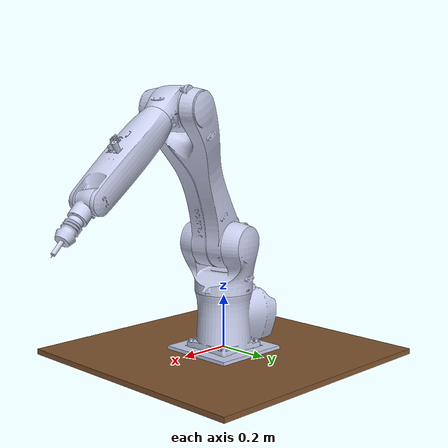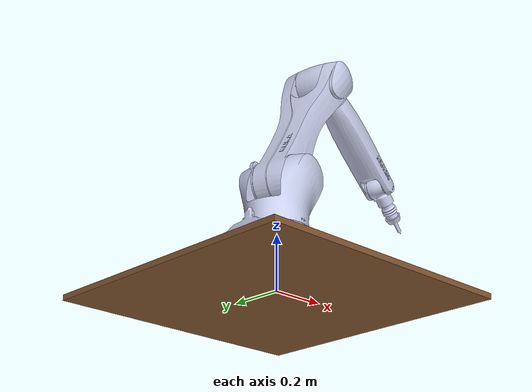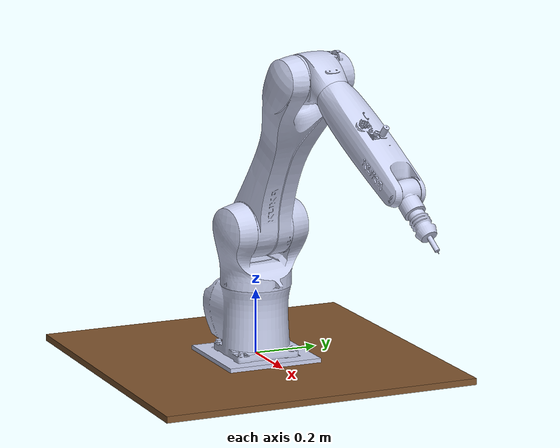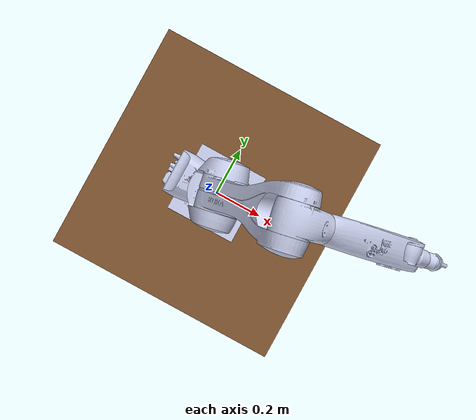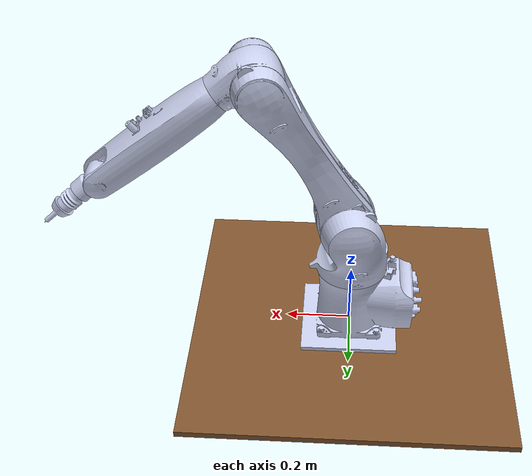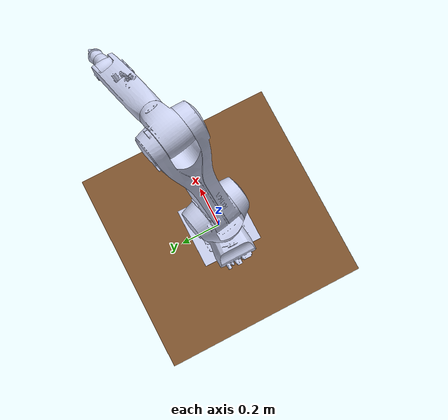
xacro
<?xml version="1.0"?>
<robot name="kr10" xmlns:xacro="http://ros.org/wiki/xacro">

    <!-- Defining the colors used in this robot -->
    <material name="Black">
        <color rgba="0 0 0 1"/>
    </material>

    <material name="White">
        <color rgba="1 1 1 1"/>
    </material>

    <material name="Blue">
        <color rgba="0 0 1 1"/>
    </material>

    <material name="Red">
        <color rgba="1 0 0 1"/>
    </material>

    <!-- Inertial matrix -->
    <xacro:macro name="inertial_matrix" params="mass">
        <inertial>
            <mass value="${mass}" />
            <inertia ixx="1.0" ixy="0.0" ixz="0.0" iyy="0.5" iyz="0.0" izz="1.0" />
        </inertial>
    </xacro:macro>

  <!-- ///////////////////////////////////////   bottom_joint   ////////////////////////////////////////// -->
   <joint name="dummy_joint" type="fixed">
     <origin xyz="0 0 0" rpy="0 0 0" />
     <parent link="dummy"/>
     <child link="base_link"/>
   </joint>
    <link name="dummy">
        <visual>
              <origin xyz=" 0 0 -0.02"  rpy="0 0 0"/>
                  <geometry>
                       <box size="1 1 0.02" />
                  </geometry>
              <material name="Brown" />
        </visual>
        <collision>
            <origin xyz=" 0 0 -0.02"  rpy="0 0 0"/>
            <geometry>
                <box size="1 1 0.02" />
            </geometry>
        </collision>
        <xacro:inertial_matrix mass="500"/>
    </link>

  <!-- /////////////////////////////////////   BASE LINK    ////////////////////////////////////////////// -->

  <link
    name="base_link">
    <inertial>
      <origin
        xyz="-0.0389079126292309 -4.2959014174726E-05 0.095499912626456"
        rpy="0 0 0" />
      <mass
        value="12.0127122518777" />
      <inertia
        ixx="0.096372089081788"
        ixy="-0.000105055998553245"
        ixz="0.0056899080162169"
        iyy="0.13962559834333"
        iyz="-8.4214207924127E-06"
        izz="0.121027155275122" />
    </inertial>
    <visual>
      <origin
        xyz="0 0 0"
        rpy="0 0 0" />
      <geometry>
        <mesh
          filename="package://kr10/meshes/base_link.STL" />
      </geometry>
      <material
        name="">
        <color
          rgba="0.792156862745098 0.819607843137255 0.933333333333333 1" />
      </material>
    </visual>
    <collision>
      <origin
        xyz="0 0 0"
        rpy="0 0 0" />
      <geometry>
        <mesh
          filename="package://kr10/meshes/base_link.STL" />
      </geometry>
    </collision>
  </link>
  <link
    name="link1">
    <inertial>
      <origin
        xyz="0.00741380480149578 0.00354552947139167 0.115715412511507"
        rpy="0 0 0" />
      <mass
        value="6.2751497959128" />
      <inertia
        ixx="0.0751893674671946"
        ixy="0.00504886489144856"
        ixz="-0.00509592816750828"
        iyy="0.0510924965053144"
        iyz="-0.001549309062334"
        izz="0.0562677349522946" />
    </inertial>
    <visual>
      <origin
        xyz="0 0 0"
        rpy="0 0 0" />
      <geometry>
        <mesh
          filename="package://kr10/meshes/link1.STL" />
      </geometry>
      <material
        name="">
        <color
          rgba="0.792156862745098 0.819607843137255 0.933333333333333 1" />
      </material>
    </visual>
    <collision>
      <origin
        xyz="0 0 0"
        rpy="0 0 0" />
      <geometry>
        <mesh
          filename="package://kr10/meshes/link1.STL" />
      </geometry>
    </collision>
  </link>
  <joint
    name="joint1"
    type="revolute">
    <origin
      xyz="0 0 0.217"
      rpy="0 0 0" />
    <parent
      link="base_link" />
    <child
      link="link1" />
    <axis
      xyz="0 0 1" />
    <limit
      lower="-3"
      upper="3"
        effort="300"
        velocity="1" />
      <dynamics damping="10.0" friction="0.0"/>
  </joint>
  <link
    name="link2">
    <inertial>
      <origin
        xyz="0.112673325433516 -0.235533330268791 5.25939883689319E-05"
        rpy="0 0 0" />
      <mass
        value="10.0623910575082" />
      <inertia
        ixx="0.373446746946084"
        ixy="0.169218239470221"
        ixz="-0.000352160811815804"
        iyy="0.131793291732547"
        iyz="0.000952442844566425"
        izz="0.442938494752101" />
    </inertial>
    <visual>
      <origin
        xyz="0 0 0"
        rpy="0 0 0" />
      <geometry>
        <mesh
          filename="package://kr10/meshes/link2.STL" />
      </geometry>
      <material
        name="">
        <color
          rgba="0.792156862745098 0.819607843137255 0.933333333333333 1" />
      </material>
    </visual>
    <collision>
      <origin
        xyz="0 0 0"
        rpy="0 0 0" />
      <geometry>
        <mesh
          filename="package://kr10/meshes/link2.STL" />
      </geometry>
    </collision>
  </link>
  <joint
    name="joint2"
    type="revolute">
    <origin
      xyz="0.025397 0.00050592 0.183"
      rpy="-1.5708 0 0.19801" />
    <parent
      link="link1" />
    <child
      link="link2" />
    <axis
      xyz="0 0 -1" />
    <limit
      lower="-1.4"
      upper="2.1"
      effort="300"
      velocity="1" />
    <dynamics damping="10" friction="0.0"/>
  </joint>
  <link
    name="link3">
    <inertial>
      <origin
        xyz="0.000529908025397541 0.0191760796551027 -2.4642212648307E-05"
        rpy="0 0 0" />
      <mass
        value="2.87413726622842" />
      <inertia
        ixx="0.0106153706452702"
        ixy="-0.000284572592443065"
        ixz="-3.571396350265E-06"
        iyy="0.00740315810462365"
        iyz="1.82140206105029E-06"
        izz="0.0111376816178918" />
    </inertial>
    <visual>
      <origin
        xyz="0 0 0"
        rpy="0 0 0" />
      <geometry>
        <mesh
          filename="package://kr10/meshes/link3.STL" />
      </geometry>
      <material
        name="">
        <color
          rgba="0.792156862745098 0.819607843137255 0.933333333333333 1" />
      </material>
    </visual>
    <collision>
      <origin
        xyz="0 0 0"
        rpy="0 0 0" />
      <geometry>
        <mesh
          filename="package://kr10/meshes/link3.STL" />
      </geometry>
    </collision>
  </link>
  <joint
    name="joint3"
    type="revolute">
    <origin
      xyz="0.25768 -0.49719 0.0035"
      rpy="-3.1416 0 1.5708" />
    <parent
      link="link2" />
    <child
      link="link3" />
    <axis
      xyz="0 0 -1" />
    <limit
      lower="-4"
      upper="1"
      effort="300"
      velocity="1" />
    <dynamics damping="10" friction="0.0"/>
  </joint>
  <link
    name="link4">
    <inertial>
      <origin
        xyz="0.000495827295870943 0.000331263303056328 0.185104333291848"
        rpy="0 0 0" />
      <mass
        value="4.03623874477417" />
      <inertia
        ixx="0.0514724229213813"
        ixy="-0.000345898984168441"
        ixz="-7.55534798658624E-05"
        iyy="0.0508207618372116"
        iyz="-0.000225438428481011"
        izz="0.00734338590437416" />
    </inertial>
    <visual>
      <origin
        xyz="0 0 0"
        rpy="0 0 0" />
      <geometry>
        <mesh
          filename="package://kr10/meshes/link4.STL" />
      </geometry>
      <material
        name="">
        <color
          rgba="0.792156862745098 0.819607843137255 0.933333333333333 1" />
      </material>
    </visual>
    <collision>
      <origin
        xyz="0 0 0"
        rpy="0 0 0" />
      <geometry>
        <mesh
          filename="package://kr10/meshes/link4.STL" />
      </geometry>
    </collision>
  </link>
  <joint
    name="joint4"
    type="continuous">
    <origin
      xyz="0.037811 0.11612 0"
      rpy="1.5708 -0.33893 2.5361" />
    <parent
      link="link3" />
    <child
      link="link4" />
    <axis
      xyz="0 0 -1" />
    <dynamics damping="5" friction="0.0"/>
  </joint>
  <link
    name="link5">
    <inertial>
      <origin
        xyz="0.0120557743377237 0.0101959936253579 0.0021636985615841"
        rpy="0 0 0" />
      <mass
        value="0.4420683299725" />
      <inertia
        ixx="0.000419965604922443"
        ixy="-0.000120215358737915"
        ixz="1.29271922535509E-05"
        iyy="0.00046073941946462"
        iyz="1.04681508421518E-05"
        izz="0.000528480867675673" />
    </inertial>
    <visual>
      <origin
        xyz="0 0 0"
        rpy="0 0 0" />
      <geometry>
        <mesh
          filename="package://kr10/meshes/link5.STL" />
      </geometry>
      <material
        name="">
        <color
          rgba="0.792156862745098 0.819607843137255 0.933333333333333 1" />
      </material>
    </visual>
    <collision>
      <origin
        xyz="0 0 0"
        rpy="0 0 0" />
      <geometry>
        <mesh
          filename="package://kr10/meshes/link5.STL" />
      </geometry>
    </collision>
  </link>
  <joint
    name="joint5"
    type="revolute">
    <origin
      xyz="9.6051E-05 0.00023081 0.398"
      rpy="1.5708 -0.97526 -0.39435" />
    <parent
      link="link4" />
    <child
      link="link5" />
    <axis
      xyz="0 0 -1" />
    <limit
      lower="-1.8"
      upper="2.1"
      effort="300"
      velocity="1" />
    <dynamics damping="1" friction="0.0"/>
  </joint>
  <link
    name="link6">
    <inertial>
      <origin
        xyz="-2.27839703337285E-06 -1.67395761618838E-06 0.0553153630699634"
        rpy="0 0 0" />
      <mass
        value="0.213549096503453" />
      <inertia
        ixx="0.000219860024372743"
        ixy="-4.50770251278094E-09"
        ixz="-2.33140665193661E-08"
        iyy="0.000219862847887346"
        iyz="-1.71290426984171E-08"
        izz="7.43113458858691E-05" />
    </inertial>
    <visual>
      <origin
        xyz="0 0 0"
        rpy="0 0 0" />
      <geometry>
        <mesh
          filename="package://kr10/meshes/link6.STL" />
      </geometry>
      <material
        name="">
        <color
          rgba="0.792156862745098 0.819607843137255 0.933333333333333 1" />
      </material>
    </visual>
    <collision>
      <origin
        xyz="0 0 0"
        rpy="0 0 0" />
      <geometry>
        <mesh
          filename="package://kr10/meshes/link6.STL" />
      </geometry>
    </collision>
  </link>
  <joint
    name="joint6"
    type="continuous">
    <origin
      xyz="0.050858 0.042845 0.00025"
      rpy="-1.5708 0.34761 -0.87071" />
    <parent
      link="link5" />
    <child
      link="link6" />
    <axis
      xyz="0 0 1" />
    <dynamics damping="1" friction="0.0"/>
  </joint>

    <!-- /////////////////////////////////   Gazebo   ////////////////////////////////////// -->
    <!-- Transmissions for ROS Control -->
    <xacro:macro name="transmission_block" params="joint_name">
        <transmission name="tran1">
            <type>transmission_interface/SimpleTransmission</type>
            <joint name="${joint_name}">
                <hardwareInterface>hardware_interface/PositionJointInterface</hardwareInterface>
            </joint>
            <actuator name="motor1">
                <hardwareInterface>hardware_interface/PositionJointInterface</hardwareInterface>
                <mechanicalReduction>1</mechanicalReduction>
            </actuator>
        </transmission>
    </xacro:macro>

    <xacro:transmission_block joint_name="joint1"/>
    <xacro:transmission_block joint_name="joint2"/>
    <xacro:transmission_block joint_name="joint3"/>
    <xacro:transmission_block joint_name="joint4"/>
    <xacro:transmission_block joint_name="joint5"/>
    <xacro:transmission_block joint_name="joint6"/>

    <!-- ros_control plugin -->
    <gazebo>
        <plugin name="gazebo_ros_control" filename="libgazebo_ros_control.so">
            <robotNamespace>/kr10</robotNamespace>
        </plugin>
    </gazebo>

</robot>
